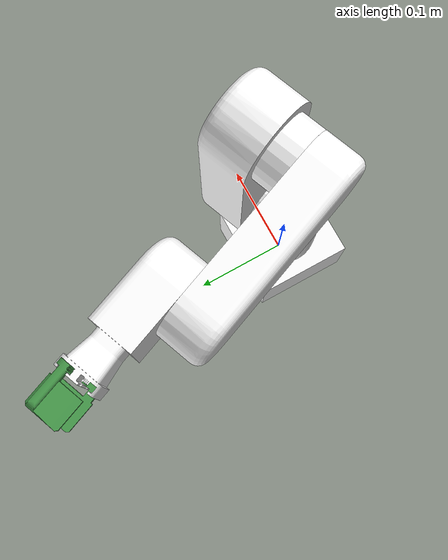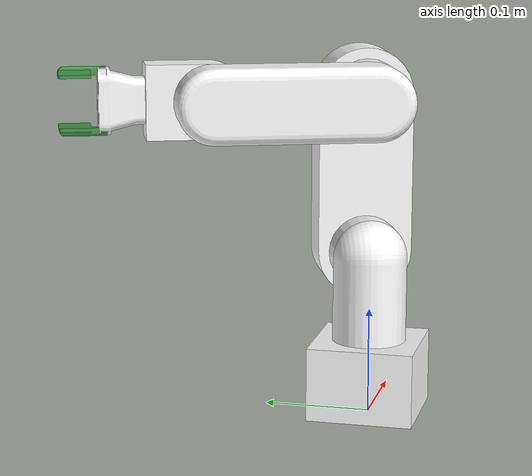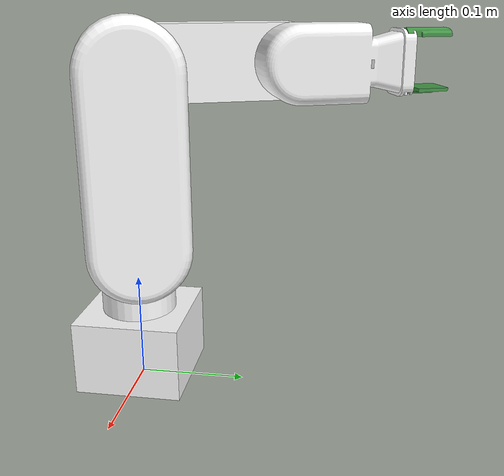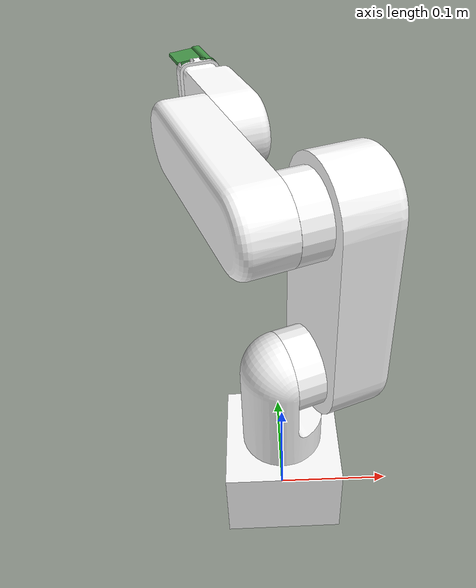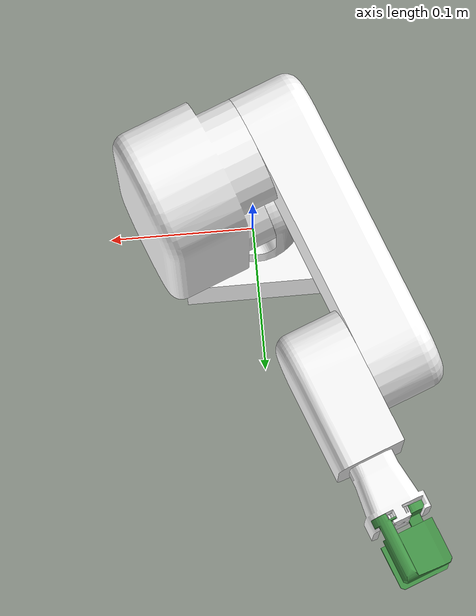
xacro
<?xml version="1.0"?>
<robot name="final_urdf" xmlns:xacro="http://www.ros.org/wiki/xacro">

  <material name="White">
      <color rgba="1 1 1 1" />
  </material>

  <material name="Green">
      <color rgba="0.266666666666667 0.588235294117647 0.282352941176471 1" />
  </material>

  <link name="base_footprint">
      <visual>
          <origin xyz="0 0 0" rpy="0 0 0" />
          <geometry>
              <box size="0.001 0.001 0.001" />
          </geometry>
      </visual>
  </link>

  <joint name="base_footprint_joint" type="fixed">
      <origin xyz="0 0 0.001" rpy="0 0 0" />
      <parent link="base_footprint"/>
      <child link="base_link" />
  </joint>
    <link
      name="base_link">
      <inertial>
        <origin
          xyz="3.81639164622205E-17 -1.61011833905913E-17 0.0425864553314121"
          rpy="0 0 0" />
        <mass
          value="10" />
        <inertia
          ixx="0.6"
          ixy="0"
          ixz="0"
          iyy="0.5"
          iyz="0"
          izz="0.6" />
      </inertial>
      <visual>
        <origin
          xyz="0 0 0"
          rpy="0 0 0" />
        <geometry>
          <mesh
            filename="package://robot_crafters/meshes/visual/base_link.STL" />
        </geometry>
        <material
          name="White">
        </material>
      </visual>
      <collision>
        <origin
          xyz="3.81639164622205E-17 -1.61011833905913E-17 0.0"
          rpy="0 0 0" />
        <geometry>
          <mesh
            filename="package://robot_crafters/meshes/visual/base_link.STL" />
        </geometry>
      </collision>
    </link>
    <link
      name="link_1">
      <inertial>
        <origin
          xyz="-0.00726865780665834 -0.00285369668637606 0.04360556108188"
          rpy="0 0 0" />
        <mass
          value="0.263221784038489" />
        <inertia
          ixx="0.6"
          ixy="0"
          ixz="0"
          iyy="0.5"
          iyz="0"
          izz="0.6" />
      </inertial>
      <visual>
        <origin
          xyz="0 0 0"
          rpy="0 0 0" />
        <geometry>
          <mesh
            filename="package://robot_crafters/meshes/visual/link_1.STL" />
        </geometry>
        <material
          name="White">
        </material>
      </visual>
      <collision>
        <origin
          xyz="-0.00726865780665834 -0.00285369668637606 0.04360556108188"
          rpy="0 0 0" />
        <geometry>
          <mesh
            filename="package://robot_crafters/meshes/visual/link_1.STL" />
        </geometry>
      </collision>
    </link>
    <joint
      name="joint_1"
      type="revolute">
      <origin
        xyz="0 0 0.07"
        rpy="0 0 0" />
      <parent
        link="base_link" />
      <child
        link="link_1" />
      <axis
        xyz="0 0 1" />
      <limit
        lower="-3.142"
        upper="3.142"
        effort="300"
        velocity="3" />
      <dynamics
        damping="0.1"
        friction="4" />
    </joint>
    <link
      name="link_2">
      <inertial>
        <origin
          xyz="-1.73472347597681E-17 -0.075 0.0212098007792094"
          rpy="0 0 0" />
        <mass
          value="1.29806509506951" />
        <inertia
          ixx="0.6"
          ixy="0"
          ixz="0"
          iyy="0.5"
          iyz="0"
          izz="0.6" />
      </inertial>
      <visual>
        <origin
          xyz="0 0 0"
          rpy="0 0 0" />
        <geometry>
          <mesh
            filename="package://robot_crafters/meshes/visual/link_2.STL" />
        </geometry>
        <material
          name="White">
        </material>
      </visual>
      <collision>
        <origin
          xyz="-1.73472347597681E-17 -0.075 0.0212098007792094"
          rpy="0 0 0" />
        <geometry>
          <mesh
            filename="package://robot_crafters/meshes/visual/link_2.STL" />
        </geometry>
      </collision>
    </link>
    <joint
      name="joint_2"
      type="revolute">
      <origin
        xyz="0.023271 0.0091362 0.08"
        rpy="-1.5708 0 -1.1967" />
      <parent
        link="link_1" />
      <child
        link="link_2" />
      <axis
        xyz="0 0 -1" />
      <limit
        lower="-1.57"
        upper="1.57"
        effort="200"
        velocity="3" />
      <dynamics
        damping="0.1"
        friction="4" />
    </joint>
    <link
      name="link_3">
      <inertial>
        <origin
          xyz="0.0749999999999999 0 0.0221538622967558"
          rpy="0 0 0" />
        <mass
          value="0.647520566305543" />
        <inertia
          ixx="0.6"
          ixy="0"
          ixz="0"
          iyy="0.5"
          iyz="0"
          izz="0.6" />
      </inertial>
      <visual>
        <origin
          xyz="0 0 0"
          rpy="0 0 0" />
        <geometry>
          <mesh
            filename="package://robot_crafters/meshes/visual/link_3.STL" />
        </geometry>
        <material
          name="White">
        </material>
      </visual>
      <collision>
        <origin
          xyz="0.0749999999999999 0 0.0221538622967558"
          rpy="0 0 0" />
        <geometry>
          <mesh
            filename="package://robot_crafters/meshes/visual/link_3.STL" />
        </geometry>
      </collision>
    </link>
    <joint
      name="joint_3"
      type="revolute">
      <origin
        xyz="0 -0.15 -0.025"
        rpy="3.1416 0 3.1416" />
      <parent
        link="link_2" />
      <child
        link="link_3" />
      <axis
        xyz="0 0 1" />
      <limit
        lower="-2.617"
        upper="1"
        effort="300"
        velocity="3" />
      <dynamics
        damping="0.1"
        friction="2.5" />
    </joint>
    <link
      name="link_4">
      <inertial>
        <origin
          xyz="-0.0260016749419192 2.30871791572218E-05 0.0221909941892141"
          rpy="0 0 0" />
        <mass
          value="0.323800131384377" />
        <inertia
          ixx="0.6"
          ixy="0"
          ixz="0"
          iyy="0.5"
          iyz="0"
          izz="0.6" />
      </inertial>
      <visual>
        <origin
          xyz="0 0 0"
          rpy="0 0 0" />
        <geometry>
          <mesh
            filename="package://robot_crafters/meshes/visual/link_4.STL" />
        </geometry>
        <material
          name="White">
        </material>
      </visual>
      <collision>
        <origin
          xyz="-0.0260016749419192 2.30871791572218E-05 0.0221909941892141"
          rpy="0 0 0" />
        <geometry>
          <mesh
            filename="package://robot_crafters/meshes/visual/link_4.STL" />
        </geometry>
      </collision>
    </link>
    <joint
      name="joint_4"
      type="revolute">
      <origin
        xyz="0.15 0 0"
        rpy="-3.1416 0 3.1416" />
      <parent
        link="link_3" />
      <child
        link="link_4" />
      <axis
        xyz="0 0 1" />
      <limit
        lower="-1.57"
        upper="1.57"
        effort="200"
        velocity="3" />
      <dynamics
        damping="0.1"
        friction="2.5" />
    </joint>
    <link
      name="finger_1">
      <inertial>
        <origin
          xyz="0.0050659568614265 0.00722328240335451 0.000708156431126539"
          rpy="0 1.57 1.57" />
        <mass
          value="0.00693344911968842" />
        <inertia
          ixx="0.6"
          ixy="0"
          ixz="0"
          iyy="0.5"
          iyz="0"
          izz="0.6" />
      </inertial>
      <visual>
        <origin
          xyz="0 0 0"
          rpy="3.142 0 0" />
        <geometry>
          <mesh
            filename="package://robot_crafters/meshes/visual/finger_1.STL" />
        </geometry>
        <material
          name="Green">
        </material>
      </visual>
      <collision>
        <origin
          xyz="0.0050659568614265 0.00722328240335451 0.000708156431126539"
          rpy="0 1.57 1.57" />
        <geometry>
          <mesh
            filename="package://robot_crafters/meshes/visual/finger_1.STL" />
        </geometry>
      </collision>
    </link>
    <joint
      name="finger_joint_1"
      type="prismatic">
      <origin
        xyz="-0.12314 -0.022919 0.023221"
        rpy="1.5708 -1.5708 0" />
      <parent
        link="link_4" />
      <child
        link="finger_1" />
      <axis
        xyz="0 0 -1" />
      <limit
        lower="0"
        upper="0.02"
        effort="100"
        velocity="3" />
      <dynamics
        damping="0.1"
        friction="2.5" />
    </joint>
    <link
      name="finger_2">
      <inertial>
        <origin
          xyz="0.00506595899372983 0.00722329429647373 0.000708146948421196"
          rpy="0 0 0" />
        <mass
          value="0.00693344898001996" />
        <inertia
          ixx="0.6"
          ixy="0"
          ixz="0"
          iyy="0.5"
          iyz="0"
          izz="0.6" />
      </inertial>
      <visual>
        <origin
          xyz="0 0 0"
          rpy="0 0 0" />
        <geometry>
          <mesh
            filename="package://robot_crafters/meshes/visual/finger_2.STL" />
        </geometry>
        <material
          name="Green">
        </material>
      </visual>
      <collision>
        <origin
          xyz="0.00506595899372983 0.00722329429647373 0.000708146948421196"
          rpy="0 0 0" />
        <geometry>
          <mesh
            filename="package://robot_crafters/meshes/visual/finger_2.STL" />
        </geometry>
      </collision>
    </link>
    <joint
      name="finger_joint_2"
      type="prismatic">
      <origin
        xyz="-0.12314 0.022928 0.021779"
        rpy="1.5708 1.5708 0" />
      <parent
        link="link_4" />
      <child
        link="finger_2" />
      <axis
        xyz="0 0 1" />
      <limit
        lower="0"
        upper="0.02"
        effort="100"
        velocity="3" />
      <dynamics
        damping="0.1"
        friction="2.5" />
    </joint>

  <!-- Fix colors in Gazebo -->
  <gazebo reference="base_link">
      <material>Gazebo/White</material>
  </gazebo>
  <gazebo reference="finger_1">
      <material>Gazebo/Green</material>
  </gazebo>
  <gazebo reference="finger_2">
      <material>Gazebo/Green</material>
  </gazebo>
  <gazebo reference="link_1">
      <material>Gazebo/White</material>
  </gazebo>
  <gazebo reference="link_2">
      <material>Gazebo/White</material>
  </gazebo>
  <gazebo reference="link_3">
      <material>Gazebo/White</material>
  </gazebo>
  <gazebo reference="link_4">
      <material>Gazebo/White</material>
  </gazebo>

  <gazebo>
      <plugin name="joint_state_publisher_controller"
              filename="libgazebo_ros_joint_state_publisher.so">
          <!-- Update rate in Hertz -->
          <update_rate>60</update_rate>
          <!-- Name of joints in the model whose states will be published. -->
          <joint_name>base_footprint_joint</joint_name>
          <joint_name>joint_1</joint_name>
          <joint_name>joint_2</joint_name>
          <joint_name>joint_3</joint_name>
          <joint_name>joint_4</joint_name>
          <joint_name>finger_joint_1</joint_name>
          <joint_name>finger_joint_2</joint_name>
      </plugin>
  </gazebo>

  <gazebo>
      <plugin name="joint_pose_trajectory_controller"
              filename="libgazebo_ros_joint_pose_trajectory.so">
          <!-- Update rate in Hz -->
          <update_rate>60</update_rate>
      </plugin>
  </gazebo>

</robot>
